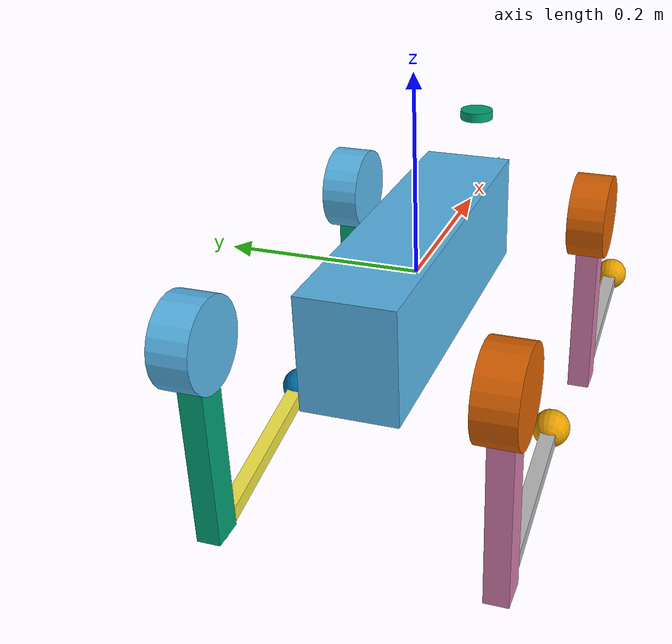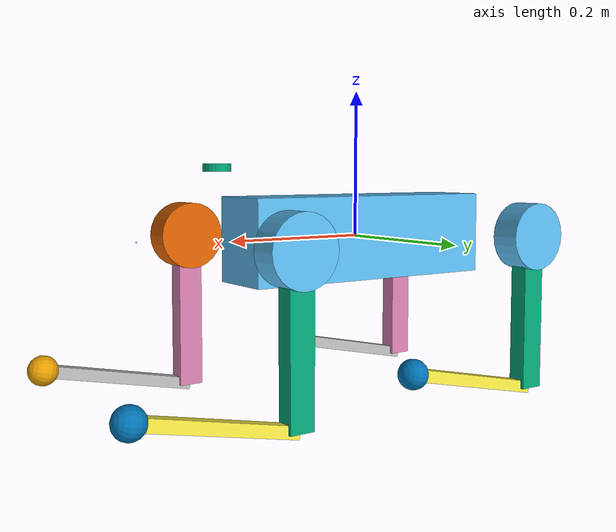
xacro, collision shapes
<?xml version="1.0"?>

<robot name="robot" xmlns:xacro="http://www.ros.org/wiki/xacro">

    <xacro:arg name="DEBUG" default="false"/>
    <xacro:arg name="robot_name" default="robot1"/>
    <xacro:arg name="robot_model" default="model_0"/>

    <xacro:include filename="$(find go2_description)/xacro/const.xacro"/>
    <xacro:include filename="$(find go2_description)/xacro/materials.xacro"/>
    <xacro:include filename="$(find go2_description)/xacro/cargo_box.xacro"/>
    <xacro:include filename="$(find go2_description)/xacro/leg.xacro"/>
    <xacro:include filename="$(find go2_description)/xacro/gazebo.xacro"/>
    <xacro:robot_gazebo_sensors robot_name="$(arg robot_name)" robot_model="$(arg robot_model)"/>

    <!-- Rotor related joint and link is only for demonstrate location. -->
    <!-- Actually, the rotor will rotate and the joint is not fixed. Reduction ratio should be considered. -->

    <!-- Debug mode will hung up the robot, use "true" or "false" to switch it. -->
    <xacro:if value="$(arg DEBUG)">
        <link name="world"/>
        <joint name="base_static_joint" type="fixed">
            <origin rpy="0 0 0" xyz="0 0 0"/>
            <parent link="world"/>
            <child link="base_link"/>
        </joint>
    </xacro:if>

    <link name="base_link">
        <visual>
            <origin rpy="0 0 0" xyz="0 0 0"/>
            <geometry>
                <box size="0.001 0.001 0.001"/>
            </geometry>
        </visual>
    </link>

    <joint name="floating_base" type="fixed">
        <origin rpy="0 0 0" xyz="0 0 0"/>
        <parent link="base_link"/>
        <child link="trunk"/>
    </joint>

    <link name="trunk">
        <visual>
            <origin rpy="0 0 0" xyz="0 0 0"/>
            <geometry>
                <mesh filename="file://$(find go2_description)/meshes/trunk.dae" scale="1 1 1"/>
            </geometry>
        </visual>
        <collision>
            <origin rpy="0 0 0" xyz="0 0 0"/>
            <geometry>
                <box size="${trunk_length} ${trunk_width} ${trunk_height}"/>
            </geometry>
        </collision>
        <inertial>
            <origin rpy="0 0 0" xyz="${trunk_com_x} ${trunk_com_y} ${trunk_com_z}"/>
            <mass value="${trunk_mass}"/>
            <inertia
                ixx="${trunk_ixx}" ixy="${trunk_ixy}" ixz="${trunk_ixz}"
                iyy="${trunk_iyy}" iyz="${trunk_iyz}"
                izz="${trunk_izz}"/>
        </inertial>
    </link>

    <xacro:cargo_box robot_model="$(arg robot_model)" parent_link="trunk"/>

    <joint name='laser_scan' type='fixed'>
        <parent link="base_link"/>,
        <child link="laser_frame"/>
        <origin xyz="0.22 0.0 0.095" rpy="0 0 0" />
    </joint>

    <link name="laser_frame">
        <inertial>
            <mass value="0.001"/>
            <origin rpy="0 0 0" xyz="0 0 0"/>
            <inertia ixx="0.0001" ixy="0" ixz="0" iyy="0.0001" iyz="0" izz="0.0001"/>
        </inertial>
        <visual>
            <origin rpy="0 0 0" xyz="0 0 0"/>
            <geometry>
                <cylinder length="0.01" radius="0.018" />
            </geometry>
        </visual>
        <collision>
            <origin rpy="0 0 0" xyz="0 0 0"/>
            <geometry>
                <cylinder length="0.01" radius="0.018" />
            </geometry>
        </collision>
    </link>

    <joint name="imu_joint" type="fixed">
        <parent link="base_link"/>
        <child link="imu_link"/>
        <origin rpy="0 0 0" xyz="0 0 0"/>
    </joint>

    <link name="imu_link">
        <inertial>
            <mass value="0.001"/>
            <origin rpy="0 0 0" xyz="0 0 0"/>
            <inertia ixx="0.0001" ixy="0" ixz="0" iyy="0.0001" iyz="0" izz="0.0001"/>
        </inertial>
        <visual>
            <origin rpy="0 0 0" xyz="0 0 0"/>
            <geometry>
                <box size="0.001 0.001 0.001"/>
            </geometry>
        </visual>
        <collision>
            <origin rpy="0 0 0" xyz="0 0 0"/>
            <geometry>
                <box size=".001 .001 .001"/>
            </geometry>
        </collision>
    </link>

    <joint name="camera_face_joint" type="fixed">
        <parent link="base_link"/>
        <child link="camera_face"/>
        <origin xyz="0.33 0 0.0057" rpy="0 0 0"/>
    </joint>

    <link name="camera_face">
        <inertial>
            <mass value="0.001"/>
            <origin rpy="0 0 0" xyz="0 0 0"/>
            <inertia ixx="0.0001" ixy="0" ixz="0" iyy="0.0001" iyz="0" izz="0.0001"/>
        </inertial>
        <visual>
            <origin rpy="0 0 0" xyz="0 0 0"/>
            <geometry>
                <box size="0.001 0.001 0.001"/>
            </geometry>
        </visual>
        <collision>
            <origin rpy="0 0 0" xyz="0 0 0"/>
            <geometry>
                <box size="0.001 0.001 0.001"/>
            </geometry>
        </collision>
    </link>
    <xacro:leg name="rf" mirror="-1" mirror_dae= "False" front_hind="1"  front_hind_dae="True"  />
    <xacro:leg name="lf" mirror="1"  mirror_dae="True"   front_hind="1"  front_hind_dae="True"  />
    <xacro:leg name="rh" mirror="-1" mirror_dae="False"  front_hind="-1" front_hind_dae="False" />
    <xacro:leg name="lh" mirror="1"  mirror_dae="True"   front_hind="-1" front_hind_dae="False" />

</robot>

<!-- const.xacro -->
<robot xmlns:xacro="http://www.ros.org/wiki/xacro">

    <!-- Constants for robot dimensions -->
    <xacro:property name="PI" value="3.1415926535897931"/>
    <xacro:property name="stick_mass" value="0.00001"/>

    <!-- simplified collision value -->
    <xacro:property name="trunk_width" value="0.0935"/>
    <xacro:property name="trunk_length" value="0.3762"/>
    <xacro:property name="trunk_height" value="0.114"/>
    <xacro:property name="cargo_box_length" value="0.26"/>
    <xacro:property name="cargo_box_width" value="0.16"/>
    <xacro:property name="cargo_box_height" value="0.10"/>
    <xacro:property name="hip_radius" value="0.046"/>
    <xacro:property name="hip_length" value="0.04"/>
    <xacro:property name="thigh_shoulder_radius" value="0.041"/>
    <xacro:property name="thigh_shoulder_length" value="0.032"/>
    <xacro:property name="thigh_width" value="0.0245"/>
    <xacro:property name="thigh_height" value="0.034"/>
    <xacro:property name="calf_width" value="0.016"/>
    <xacro:property name="calf_height" value="0.016"/>
    <xacro:property name="foot_radius" value="0.02"/>
    <xacro:property name="stick_radius" value="0.01"/>
    <xacro:property name="stick_length" value="0.2"/>

    <!-- kinematic value -->
    <xacro:property name="thigh_offset" value="0.0955"/>
    <xacro:property name="thigh_length" value="0.213"/>
    <xacro:property name="calf_length" value="0.213"/>

    <!-- leg offset from trunk center value -->
    <xacro:property name="leg_offset_x" value="0.1934"/>
    <xacro:property name="leg_offset_y" value="0.0465"/>
    <xacro:property name="hip_offset" value="0.0955"/>

    <!-- offset of link locations (left front) -->
    <xacro:property name="hip_offset_x" value="0.1934"/>
    <xacro:property name="hip_offset_y" value="0.0465"/>
    <xacro:property name="hip_offset_z" value="0.0"/>

    <xacro:property name="thigh_offset_x" value="0"/>
    <xacro:property name="thigh_offset_y" value="0.0955"/>
    <xacro:property name="thigh_offset_z" value="0.0"/>

    <xacro:property name="calf_offset_x" value="0.0"/>
    <xacro:property name="calf_offset_y" value="0.0"/>
    <xacro:property name="calf_offset_z" value="-0.213"/>

    <!-- joint limits -->
    <xacro:property name="damping" value="0.01"/>
    <xacro:property name="friction" value="0.2"/>
    <xacro:property name="hip_position_max" value="1.0472"/>
    <xacro:property name="hip_position_min" value="-1.0472"/>
    <xacro:property name="hip_velocity_max" value="30.1"/>
    <xacro:property name="hip_torque_max" value="23.7"/>
    <xacro:property name="thigh_position_max" value="3.4907"/>
    <xacro:property name="thigh_position_min" value="-1.5708"/>
    <xacro:property name="thigh_velocity_max" value="30.1"/>
    <xacro:property name="thigh_torque_max" value="23.7"/>
    <xacro:property name="calf_position_max" value="-0.83776"/>
    <xacro:property name="calf_position_min" value="-2.7227"/>
    <xacro:property name="calf_velocity_max" value="20.06"/>
    <xacro:property name="calf_torque_max" value="35.55"/>

    <!-- dynamics inertial value -->
    <!-- trunk -->
    <xacro:property name="trunk_mass" value="6.921"/>
    <xacro:property name="trunk_com_x" value="0.021112"/>
    <xacro:property name="trunk_com_y" value="0.00"/>
    <xacro:property name="trunk_com_z" value="-0.005366"/>
    <xacro:property name="trunk_ixx" value="0.02448"/>
    <xacro:property name="trunk_ixy" value="0.00012166"/>
    <xacro:property name="trunk_ixz" value="0.0014849"/>
    <xacro:property name="trunk_iyy" value="0.098077"/>
    <xacro:property name="trunk_iyz" value="-3.12E-05"/>
    <xacro:property name="trunk_izz" value="0.107"/>
    <xacro:property name="cargo_box_offset_x" value="0.0"/>
    <xacro:property name="cargo_box_offset_y" value="0.0"/>
    <xacro:property name="cargo_box_clearance_z" value="0.015"/>
    <xacro:property name="cargo_box_offset_z" value="${trunk_height / 2.0 + cargo_box_height / 2.0 + cargo_box_clearance_z}"/>

    <!-- hip (left front) -->
    <xacro:property name="hip_mass" value="0.678"/>
    <xacro:property name="hip_com_x" value="-0.0054"/>
    <xacro:property name="hip_com_y" value="0.00194"/>
    <xacro:property name="hip_com_z" value="-0.000105"/>
    <xacro:property name="hip_ixx" value="0.00048"/>
    <xacro:property name="hip_ixy" value="-3.01E-06"/>
    <xacro:property name="hip_ixz" value="1.11E-06"/>
    <xacro:property name="hip_iyy" value="0.000884"/>
    <xacro:property name="hip_iyz" value="-1.42E-06"/>
    <xacro:property name="hip_izz" value="0.000596"/>

    <!-- thigh -->
    <xacro:property name="thigh_mass" value="1.152"/>
    <xacro:property name="thigh_com_x" value="-0.00374"/>
    <xacro:property name="thigh_com_y" value="-0.0223"/>
    <xacro:property name="thigh_com_z" value="-0.0327"/>
    <xacro:property name="thigh_ixx" value="0.00584"/>
    <xacro:property name="thigh_ixy" value="8.72E-05"/>
    <xacro:property name="thigh_ixz" value="-0.000289"/>
    <xacro:property name="thigh_iyy" value="0.0058"/>
    <xacro:property name="thigh_iyz" value="0.000808"/>
    <xacro:property name="thigh_izz" value="0.00103"/>

    <!-- calf -->
    <xacro:property name="calf_mass" value="0.154"/>
    <xacro:property name="calf_com_x" value="0.00548"/>
    <xacro:property name="calf_com_y" value="-0.000975"/>
    <xacro:property name="calf_com_z" value="-0.115"/>
    <xacro:property name="calf_ixx" value="0.00108"/>
    <xacro:property name="calf_ixy" value="3.4E-07"/>
    <xacro:property name="calf_ixz" value="1.72E-05"/>
    <xacro:property name="calf_iyy" value="0.0011"/>
    <xacro:property name="calf_iyz" value="8.28E-06"/>
    <xacro:property name="calf_izz" value="3.29E-05"/>

    <!-- foot -->
    <xacro:property name="foot_mass" value="0.06"/>

</robot>

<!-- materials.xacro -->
<robot>

    <material name="black">
        <color rgba="0.0 0.0 0.0 1.0"/>
    </material>

    <material name="blue">
        <color rgba="0.0 0.0 0.8 1.0"/>
    </material>

    <material name="green">
        <color rgba="0.0 0.8 0.0 1.0"/>
    </material>

    <material name="grey">
        <color rgba="0.2 0.2 0.2 0.0"/>
    </material>

    <material name="silver">
        <color rgba="${233/255} ${233/255} ${216/255} 1.0"/>
    </material>

    <material name="orange">
        <color rgba="${255/255} ${108/255} ${10/255} 1.0"/>
    </material>

    <material name="yellow">
        <color rgba="${245/255} ${214/255} ${66/255} 1.0"/>
    </material>

    <material name="brown">
        <color rgba="${222/255} ${207/255} ${195/255} 1.0"/>
    </material>

    <material name="red">
        <color rgba="0.8 0.0 0.0 1.0"/>
    </material>

    <material name="white">
        <color rgba="1.0 1.0 1.0 1.0"/>
    </material>

</robot>

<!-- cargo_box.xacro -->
<robot xmlns:xacro="http://www.ros.org/wiki/xacro">

    <xacro:macro name="cargo_box" params="robot_model parent_link:=trunk">
        <xacro:property name="cargo_box_enabled" value="${robot_model in ['model_1', 'model_3', 'model_5', 'model_7']}"/>
        <xacro:property name="cargo_box_mass" value="${1.0 if robot_model == 'model_1' else 3.0 if robot_model == 'model_3' else 5.0 if robot_model == 'model_5' else 7.0 if robot_model == 'model_7' else 0.0}"/>
        <xacro:property name="cargo_box_color" value="${'white' if robot_model == 'model_1' else 'yellow' if robot_model == 'model_3' else 'orange' if robot_model == 'model_5' else 'red' if robot_model == 'model_7' else 'white'}"/>
        <xacro:property name="cargo_box_ixx" value="${cargo_box_mass * (cargo_box_width * cargo_box_width + cargo_box_height * cargo_box_height) / 12.0}"/>
        <xacro:property name="cargo_box_iyy" value="${cargo_box_mass * (cargo_box_length * cargo_box_length + cargo_box_height * cargo_box_height) / 12.0}"/>
        <xacro:property name="cargo_box_izz" value="${cargo_box_mass * (cargo_box_length * cargo_box_length + cargo_box_width * cargo_box_width) / 12.0}"/>

        <xacro:if value="${cargo_box_enabled}">
            <joint name="cargo_box_joint" type="fixed">
                <origin rpy="0 0 0" xyz="${cargo_box_offset_x} ${cargo_box_offset_y} ${cargo_box_offset_z}"/>
                <parent link="${parent_link}"/>
                <child link="cargo_box_link"/>
            </joint>

            <link name="cargo_box_link">
                <visual>
                    <origin rpy="0 0 0" xyz="0 0 0"/>
                    <geometry>
                        <box size="${cargo_box_length} ${cargo_box_width} ${cargo_box_height}"/>
                    </geometry>
                    <material name="${cargo_box_color}"/>
                </visual>
                <collision>
                    <origin rpy="0 0 0" xyz="0 0 0"/>
                    <geometry>
                        <box size="${cargo_box_length} ${cargo_box_width} ${cargo_box_height}"/>
                    </geometry>
                </collision>
                <inertial>
                    <origin rpy="0 0 0" xyz="0 0 0"/>
                    <mass value="${cargo_box_mass}"/>
                    <inertia
                        ixx="${cargo_box_ixx}" ixy="0.0" ixz="0.0"
                        iyy="${cargo_box_iyy}" iyz="0.0"
                        izz="${cargo_box_izz}"/>
                </inertial>
            </link>
        </xacro:if>
    </xacro:macro>

</robot>

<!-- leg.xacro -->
<robot xmlns:xacro="http://www.ros.org/wiki/xacro">

    <xacro:include filename="$(find go2_description)/xacro/transmission.xacro"/>

    <xacro:macro name="leg" params="name mirror mirror_dae front_hind front_hind_dae">

        <joint name="${name}_hip_joint" type="revolute">
            <xacro:if value="${(mirror_dae == False) and (front_hind_dae == True)}">
                <origin rpy="0 0 0" xyz="${leg_offset_x} ${-leg_offset_y} 0"/>
            </xacro:if>
            <xacro:if value="${(mirror_dae == True) and (front_hind_dae == True)}">
                <origin rpy="0 0 0" xyz="${leg_offset_x} ${leg_offset_y} 0"/>
            </xacro:if>
            <xacro:if value="${(mirror_dae == False) and (front_hind_dae == False)}">
                <origin rpy="0 0 0" xyz="${-leg_offset_x} ${-leg_offset_y} 0"/>
            </xacro:if>
            <xacro:if value="${(mirror_dae == True) and (front_hind_dae == False)}">
                <origin rpy="0 0 0" xyz="${-leg_offset_x} ${leg_offset_y} 0"/>
            </xacro:if>
            <parent link="trunk"/>
            <child link="${name}_hip"/>
            <axis xyz="1 0 0"/>
            <dynamics damping="${damping}" friction="${friction}"/>
            <xacro:if value="${(mirror_dae == True)}">
                <limit effort="${hip_torque_max}" velocity="${hip_velocity_max}" lower="${hip_position_min}" upper="${hip_position_max}"/>
            </xacro:if>
            <xacro:if value="${(mirror_dae == False)}">
                <limit effort="${hip_torque_max}" velocity="${hip_velocity_max}" lower="${-hip_position_max}" upper="${-hip_position_min}"/>
            </xacro:if>
        </joint>

        <link name="${name}_hip">
            <visual>
                <xacro:if value="${(mirror_dae == True) and (front_hind_dae == True)}">
                    <origin rpy="0 0 0" xyz="0 0 0"/>
                </xacro:if>
                <xacro:if value="${(mirror_dae == False) and (front_hind_dae == True)}">
                    <origin rpy="${PI} 0 0" xyz="0 0 0"/>
                </xacro:if>
                <xacro:if value="${(mirror_dae == True) and (front_hind_dae == False)}">
                    <origin rpy="0 ${PI} 0" xyz="0 0 0"/>
                </xacro:if>
                <xacro:if value="${(mirror_dae == False) and (front_hind_dae == False)}">
                    <origin rpy="${PI} ${PI} 0" xyz="0 0 0"/>
                </xacro:if>
                <geometry>
                    <mesh filename="package://go2_description/meshes/hip.dae" scale="1 1 1"/>
                </geometry>
            </visual>
            <collision>
                <origin rpy="${PI/2.0} 0 0" xyz="0 ${hip_offset*mirror} 0"/>
                <geometry>
                    <cylinder length="${hip_length}" radius="${hip_radius}"/>
                </geometry>
            </collision>
            <inertial>
                <origin rpy="0 0 0" xyz="${hip_com_x*front_hind} ${hip_com_y*mirror} ${hip_com_z}"/>
                <mass value="${hip_mass}"/>
                <inertia
                    ixx="${hip_ixx}" ixy="${hip_ixy*mirror*front_hind}" ixz="${hip_ixz*front_hind}"
                    iyy="${hip_iyy}" iyz="${hip_iyz*mirror}"
                    izz="${hip_izz}"/>
            </inertial>
        </link>

        <joint name="${name}_thigh_joint" type="revolute">
            <origin rpy="0 0 0" xyz="0 ${thigh_offset*mirror} 0"/>
            <parent link="${name}_hip"/>
            <child link="${name}_thigh"/>
            <axis xyz="0 1 0"/>
            <dynamics damping="${damping}" friction="${friction}"/>
            <limit effort="${thigh_torque_max}" velocity="${thigh_velocity_max}" lower="${thigh_position_min}" upper="${thigh_position_max}"/>
        </joint>

        <link name="${name}_thigh">
            <visual>
                <origin rpy="0 0 0" xyz="0 0 0"/>
                <geometry>
                    <xacro:if value="${mirror_dae == True}">
                        <mesh filename="package://go2_description/meshes/thigh.dae" scale="1 1 1"/>
                    </xacro:if>
                    <xacro:if value="${mirror_dae == False}">
                        <mesh filename="package://go2_description/meshes/thigh_mirror.dae" scale="1 1 1"/>
                    </xacro:if>
                </geometry>
            </visual>
            <collision>
                <origin rpy="0 ${PI/2.0} 0" xyz="0 0 ${-thigh_length/2.0}"/>
                <geometry>
                    <box size="${thigh_length} ${thigh_width} ${thigh_height}"/>
                </geometry>
            </collision>
            <inertial>
                <origin rpy="0 0 0" xyz="${thigh_com_x} ${thigh_com_y*mirror} ${thigh_com_z}"/>
                <mass value="${thigh_mass}"/>
                <inertia
                    ixx="${thigh_ixx}" ixy="${thigh_ixy*mirror}" ixz="${thigh_ixz}"
                    iyy="${thigh_iyy}" iyz="${thigh_iyz*mirror}"
                    izz="${thigh_izz}"/>
            </inertial>
        </link>

        <joint name="${name}_calf_joint" type="revolute">
            <origin rpy="0 0 0" xyz="0 0 ${-thigh_length}"/>
            <parent link="${name}_thigh"/>
            <child link="${name}_calf"/>
            <axis xyz="0 1 0"/>
            <dynamics damping="${damping}" friction="${friction}"/>
            <limit effort="${calf_torque_max}" velocity="${calf_velocity_max}" lower="${calf_position_min}" upper="${calf_position_max}"/>
        </joint>

        <link name="${name}_calf">
            <visual>
                <origin rpy="0 0 0" xyz="0 0 0"/>
                <geometry>
                    <mesh filename="package://go2_description/meshes/calf.dae" scale="1 1 1"/>
                </geometry>
            </visual>
            <collision>
                <origin rpy="0 ${PI/2.0} 0" xyz="0 0 ${-calf_length/2.0}"/>
                <geometry>
                    <box size="${calf_length} ${calf_width} ${calf_height}"/>
                </geometry>
            </collision>
            <inertial>
                <origin rpy="0 0 0" xyz="${calf_com_x} ${calf_com_y} ${calf_com_z}"/>
                <mass value="${calf_mass}"/>
                <inertia
                    ixx="${calf_ixx}" ixy="${calf_ixy}" ixz="${calf_ixz}"
                    iyy="${calf_iyy}" iyz="${calf_iyz}"
                    izz="${calf_izz}"/>
            </inertial>
        </link>

        <joint name="${name}_foot_fixed" type="fixed">0
            <origin rpy="0 0 0" xyz="0 0 ${-(calf_length)}"/>
            <parent link="${name}_calf"/>
            <child link="${name}_foot"/>
        </joint>

        <link name="${name}_foot">
            <visual>
                <origin rpy="0 0 0" xyz="0 0 0"/>
                <geometry>
                    <sphere radius="${foot_radius-0.01}"/>
                </geometry>
            </visual>
            <collision>
                <origin rpy="0 0 0" xyz="0 0 0"/>
                <geometry>
                    <sphere radius="${foot_radius}"/>
                </geometry>
            </collision>
            <inertial>
                <mass value="${foot_mass}"/>
                <inertia
                    ixx="${(2*foot_mass)/5.0*(foot_radius*foot_radius)}" ixy="0.0" ixz="0.0"
                    iyy="${(2*foot_mass)/5.0*(foot_radius*foot_radius)}" iyz="0.0"
                    izz="${(2*foot_mass)/5.0*(foot_radius*foot_radius)}"/>
            </inertial>
        </link>

        <xacro:leg_transmission name="${name}"/>
    </xacro:macro>
</robot>
